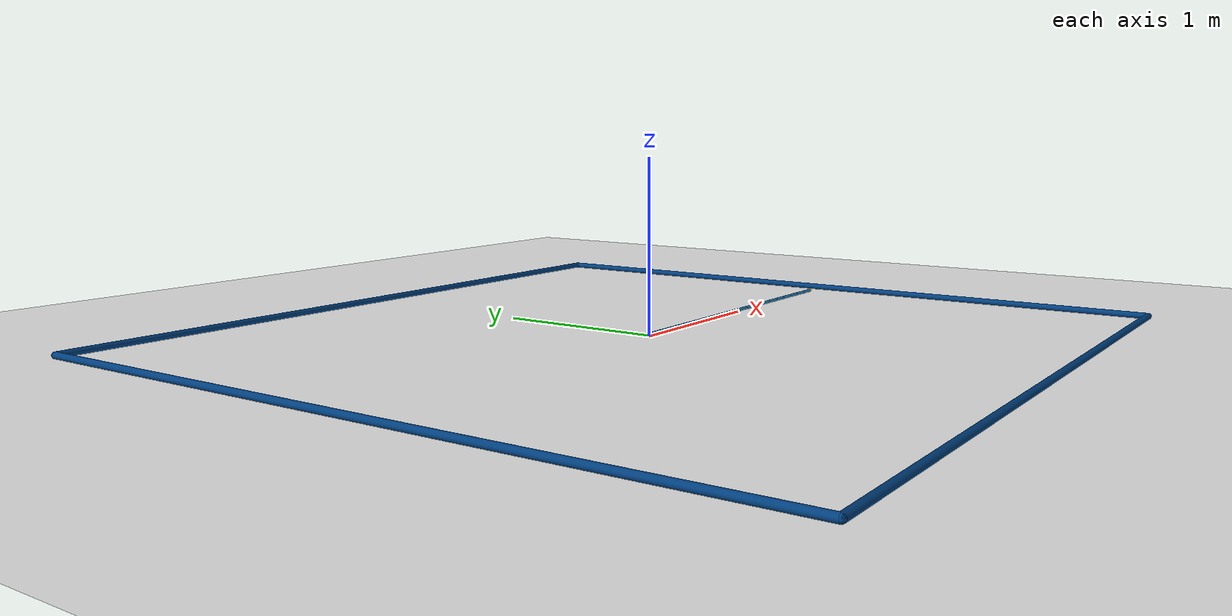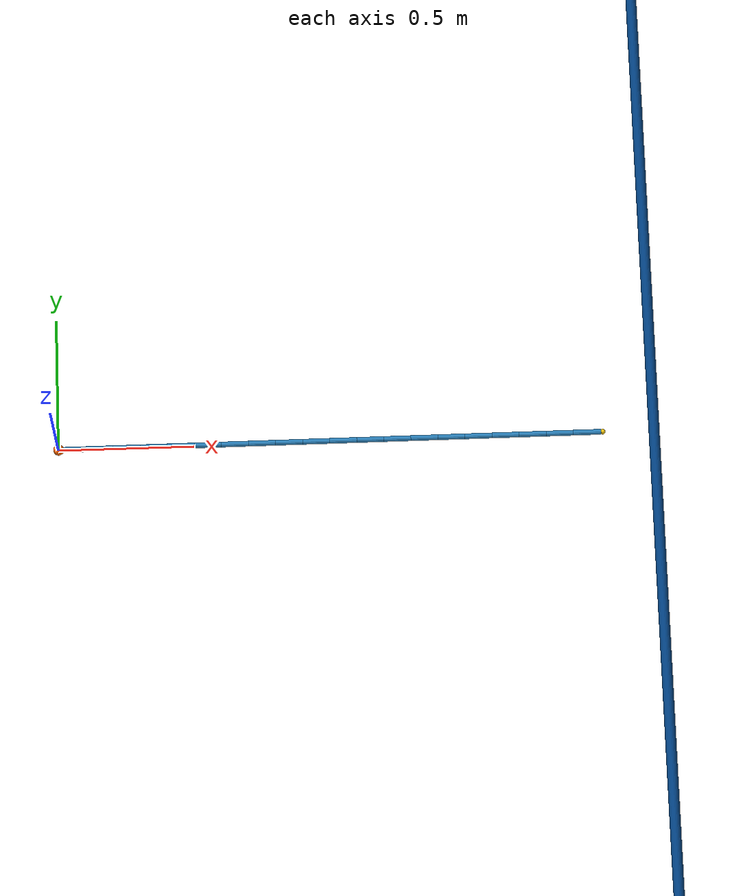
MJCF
<mujoco model="reacher20dof">
	<compiler angle="radian" inertiafromgeom="true"/>
	<default>
		<joint armature="1" damping="1" limited="true"/>
		<geom contype="0" friction="1 0.1 0.1" rgba="0.7 0.7 0 1"/>
	</default>
	<option gravity="0 0 -9.81" density="0" viscosity="0.0" integrator="RK4" timestep="0.01"/>
	<worldbody>
		<!-- Arena -->
		<geom conaffinity="0" contype="0" name="ground" pos="0 0 0" rgba="1. 1. 1. 1" size="100 100 100" type="plane"/>
		<geom conaffinity="0" fromto="-2.2 -2.2 .01 2.2 -2.2 .01" name="sideS" rgba="0 0.25 0.5 1" size=".02" type="capsule"/>
		<geom conaffinity="0" fromto=" 2.2 -2.2 .01 2.2  2.2 .01" name="sideE" rgba="0 0.25 0.5 1" size=".02" type="capsule"/>
		<geom conaffinity="0" fromto="-2.2  2.2 .01 2.2  2.2 .01" name="sideN" rgba="0 0.25 0.5 1" size=".02" type="capsule"/>
		<geom conaffinity="0" fromto="-2.2 -2.2 .01 -2.2 2.2 .01" name="sideW" rgba="0 0.25 0.5 1" size=".02" type="capsule"/>
		<!-- Arm -->
		<geom conaffinity="0" contype="0" fromto="0 0 0 0 0 0.02" name="root" rgba="0.1796875 0.796875 0.44140625 1" size=".011" type="cylinder"/>
		<body name="body0" pos="0 0 .01">
			<geom fromto="0 0 0 0.1 0 0" name="link0" rgba="0.16015625 0.5 0.72265625 1" size=".01" type="capsule"/>
			<joint axis="0 0 1" limited="false" name="joint0" pos="0 0 0" type="hinge"/>
			<body name="body1" pos="0.1 0 0">
				<joint axis="0 0 1" limited="true" name="joint1" pos="0 0 0" range="-3.14 3.14" type="hinge"/>
				<geom fromto="0 0 0 0.1 0 0" name="link1" rgba="0.16015625 0.5 0.72265625 1" size=".01" type="capsule"/>
				<body name="body2" pos="0.1 0 0">
					<joint axis="0 0 1" limited="true" name="joint2" pos="0 0 0" range="-3.14 3.14" type="hinge"/>
					<geom fromto="0 0 0 0.1 0 0" name="link2" rgba="0.16015625 0.5 0.72265625 1" size=".01" type="capsule"/>
					<body name="body3" pos="0.1 0 0">
						<joint axis="0 0 1" limited="true" name="joint3" pos="0 0 0" range="-3.14 3.14" type="hinge"/>
						<geom fromto="0 0 0 0.1 0 0" name="link3" rgba="0.16015625 0.5 0.72265625 1" size=".01" type="capsule"/>
						<body name="body4" pos="0.1 0 0">
							<joint axis="0 0 1" limited="true" name="joint4" pos="0 0 0" range="-3.14 3.14" type="hinge"/>
							<geom fromto="0 0 0 0.1 0 0" name="link4" rgba="0.16015625 0.5 0.72265625 1" size=".01" type="capsule"/>
							<body name="body5" pos="0.1 0 0">
								<joint axis="0 0 1" limited="true" name="joint5" pos="0 0 0" range="-3.14 3.14" type="hinge"/>
								<geom fromto="0 0 0 0.1 0 0" name="link5" rgba="0.16015625 0.5 0.72265625 1" size=".01" type="capsule"/>
								<body name="body6" pos="0.1 0 0">
									<joint axis="0 0 1" limited="true" name="joint6" pos="0 0 0" range="-3.14 3.14" type="hinge"/>
									<geom fromto="0 0 0 0.1 0 0" name="link6" rgba="0.16015625 0.5 0.72265625 1" size=".01" type="capsule"/>
									<body name="body7" pos="0.1 0 0">
										<joint axis="0 0 1" limited="true" name="joint7" pos="0 0 0" range="-3.14 3.14" type="hinge"/>
										<geom fromto="0 0 0 0.1 0 0" name="link7" rgba="0.16015625 0.5 0.72265625 1" size=".01" type="capsule"/>
										<body name="body8" pos="0.1 0 0">
											<joint axis="0 0 1" limited="true" name="joint8" pos="0 0 0" range="-3.14 3.14" type="hinge"/>
											<geom fromto="0 0 0 0.1 0 0" name="link8" rgba="0.16015625 0.5 0.72265625 1" size=".01" type="capsule"/>
											<body name="body9" pos="0.1 0 0">
												<joint axis="0 0 1" limited="true" name="joint9" pos="0 0 0" range="-3.14 3.14" type="hinge"/>
												<geom fromto="0 0 0 0.1 0 0" name="link9" rgba="0.16015625 0.5 0.72265625 1" size=".01" type="capsule"/>
												<body name="body10" pos="0.1 0 0">
													<joint axis="0 0 1" limited="true" name="joint10" pos="0 0 0" range="-3.14 3.14" type="hinge"/>
													<geom fromto="0 0 0 0.1 0 0" name="link10" rgba="0.16015625 0.5 0.72265625 1" size=".01" type="capsule"/>
													<body name="body11" pos="0.1 0 0">
														<joint axis="0 0 1" limited="true" name="joint11" pos="0 0 0" range="-3.14 3.14" type="hinge"/>
														<geom fromto="0 0 0 0.1 0 0" name="link11" rgba="0.16015625 0.5 0.72265625 1" size=".01" type="capsule"/>
														<body name="body12" pos="0.1 0 0">
															<joint axis="0 0 1" limited="true" name="joint12" pos="0 0 0" range="-3.14 3.14" type="hinge"/>
															<geom fromto="0 0 0 0.1 0 0" name="link12" rgba="0.16015625 0.5 0.72265625 1" size=".01" type="capsule"/>
															<body name="body13" pos="0.1 0 0">
																<joint axis="0 0 1" limited="true" name="joint13" pos="0 0 0" range="-3.14 3.14" type="hinge"/>
																<geom fromto="0 0 0 0.1 0 0" name="link13" rgba="0.16015625 0.5 0.72265625 1" size=".01" type="capsule"/>
																<body name="body14" pos="0.1 0 0">
																	<joint axis="0 0 1" limited="true" name="joint14" pos="0 0 0" range="-3.14 3.14" type="hinge"/>
																	<geom fromto="0 0 0 0.1 0 0" name="link14" rgba="0.16015625 0.5 0.72265625 1" size=".01" type="capsule"/>
																	<body name="body15" pos="0.1 0 0">
																		<joint axis="0 0 1" limited="true" name="joint15" pos="0 0 0" range="-3.14 3.14" type="hinge"/>
																		<geom fromto="0 0 0 0.1 0 0" name="link15" rgba="0.16015625 0.5 0.72265625 1" size=".01" type="capsule"/>
																		<body name="body16" pos="0.1 0 0">
																			<joint axis="0 0 1" limited="true" name="joint16" pos="0 0 0" range="-3.14 3.14" type="hinge"/>
																			<geom fromto="0 0 0 0.1 0 0" name="link16" rgba="0.16015625 0.5 0.72265625 1" size=".01" type="capsule"/>
																			<body name="body17" pos="0.1 0 0">
																				<joint axis="0 0 1" limited="true" name="joint17" pos="0 0 0" range="-3.14 3.14" type="hinge"/>
																				<geom fromto="0 0 0 0.1 0 0" name="link17" rgba="0.16015625 0.5 0.72265625 1" size=".01" type="capsule"/>
																				<body name="body18" pos="0.1 0 0">
																					<joint axis="0 0 1" limited="true" name="joint18" pos="0 0 0" range="-3.14 3.14" type="hinge"/>
																					<geom fromto="0 0 0 0.1 0 0" name="link18" rgba="0.16015625 0.5 0.72265625 1" size=".01" type="capsule"/>
																					<body name="body19" pos="0.1 0 0">
																						<joint axis="0 0 1" limited="true" name="joint19" pos="0 0 0" range="-3.14 3.14" type="hinge"/>
																						<geom fromto="0 0 0 0.1 0 0" name="link19" rgba="0.16015625 0.5 0.72265625 1" size=".01" type="capsule"/>
																						<body name="fingertip" pos="0.11 0 0">
																							<geom contype="0" name="fingertip" pos="0 0 0" rgba="0.94140625 0.765625 0.05859375 1" size=".01" type="sphere"/>
																						</body>
																					</body>
																				</body>
																			</body>
																		</body>
																	</body>
																</body>
															</body>
														</body>
													</body>
												</body>
											</body>
										</body>
									</body>
								</body>
							</body>
						</body>
					</body>
				</body>
			</body>
		</body>
		<!-- Target -->
		<body name="target" pos="0 0 0.01">
			<joint armature="0" axis="1 0 0" damping="0" limited="true" name="target_x" pos="0 0 0" range="-2.0 2.0" ref=".1" stiffness="0" type="slide"/>
			<joint armature="0" axis="0 1 0" damping="0" limited="true" name="target_y" pos="0 0 0" range="-2.0 2.0" ref="-.1" stiffness="0" type="slide"/>
			<geom conaffinity="0" contype="0" name="target" pos="0 0 0" rgba="1. 0.4 0. 1" size=".02" type="sphere"/>
		</body>
	</worldbody>
	<actuator>
		<motor ctrllimited="true" ctrlrange="-1.0 1.0" gear="200.0" joint="joint0"/>
		<motor ctrllimited="true" ctrlrange="-1.0 1.0" gear="200.0" joint="joint1"/>
		<motor ctrllimited="true" ctrlrange="-1.0 1.0" gear="200.0" joint="joint2"/>
		<motor ctrllimited="true" ctrlrange="-1.0 1.0" gear="200.0" joint="joint3"/>
		<motor ctrllimited="true" ctrlrange="-1.0 1.0" gear="200.0" joint="joint4"/>
		<motor ctrllimited="true" ctrlrange="-1.0 1.0" gear="200.0" joint="joint5"/>
		<motor ctrllimited="true" ctrlrange="-1.0 1.0" gear="200.0" joint="joint6"/>
		<motor ctrllimited="true" ctrlrange="-1.0 1.0" gear="200.0" joint="joint7"/>
		<motor ctrllimited="true" ctrlrange="-1.0 1.0" gear="200.0" joint="joint8"/>
		<motor ctrllimited="true" ctrlrange="-1.0 1.0" gear="200.0" joint="joint9"/>
		<motor ctrllimited="true" ctrlrange="-1.0 1.0" gear="200.0" joint="joint10"/>
		<motor ctrllimited="true" ctrlrange="-1.0 1.0" gear="200.0" joint="joint11"/>
		<motor ctrllimited="true" ctrlrange="-1.0 1.0" gear="200.0" joint="joint12"/>
		<motor ctrllimited="true" ctrlrange="-1.0 1.0" gear="200.0" joint="joint13"/>
		<motor ctrllimited="true" ctrlrange="-1.0 1.0" gear="200.0" joint="joint14"/>
		<motor ctrllimited="true" ctrlrange="-1.0 1.0" gear="200.0" joint="joint15"/>
		<motor ctrllimited="true" ctrlrange="-1.0 1.0" gear="200.0" joint="joint16"/>
		<motor ctrllimited="true" ctrlrange="-1.0 1.0" gear="200.0" joint="joint17"/>
		<motor ctrllimited="true" ctrlrange="-1.0 1.0" gear="200.0" joint="joint18"/>
		<motor ctrllimited="true" ctrlrange="-1.0 1.0" gear="200.0" joint="joint19"/>
	</actuator>
</mujoco>
